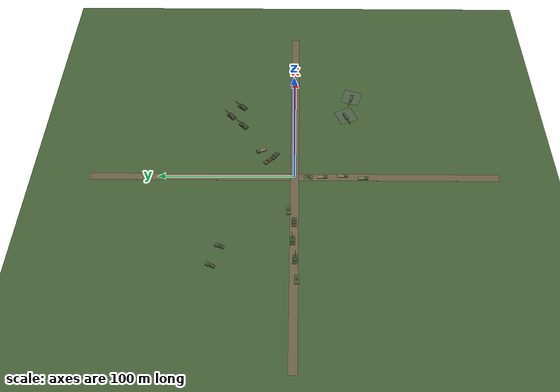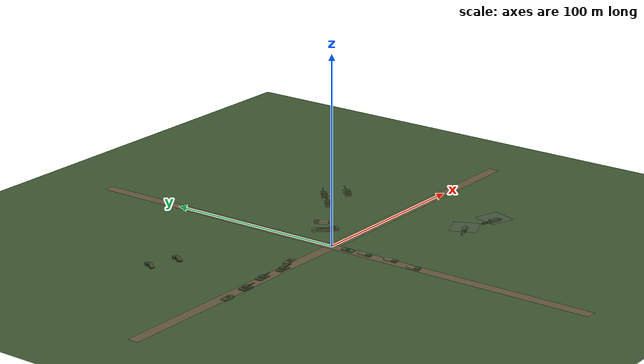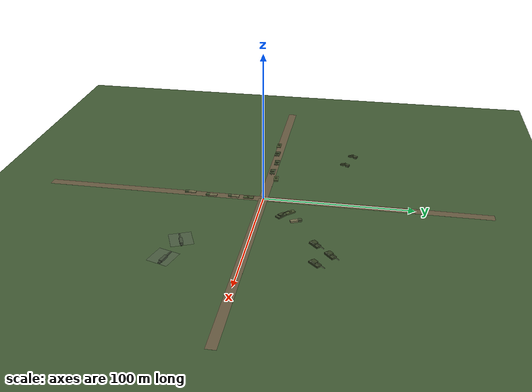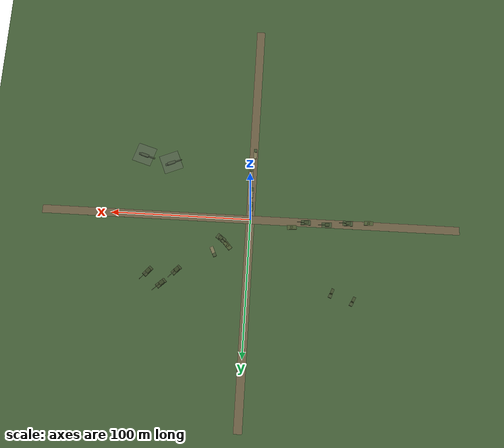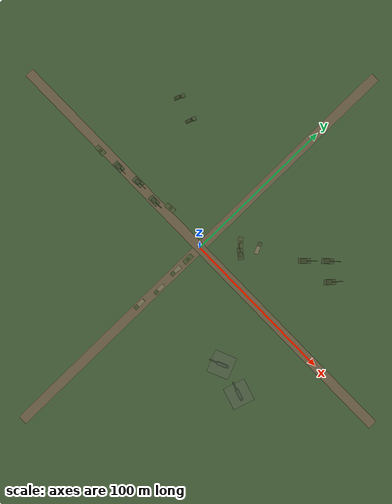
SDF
<sdf version="1.9">
 <world name="military_training">
  <physics name="1ms" type="ignore">
   <max_step_size>0.001</max_step_size>
   <real_time_factor>1.0</real_time_factor>
  </physics>
  <plugin filename="gz-sim-physics-system" name="gz::sim::systems::Physics"/>
  <plugin filename="gz-sim-sensors-system" name="gz::sim::systems::Sensors">
   <render_engine>ogre2</render_engine>
  </plugin>
  <plugin filename="gz-sim-user-commands-system" name="gz::sim::systems::UserCommands"/>
  <plugin filename="gz-sim-scene-broadcaster-system" name="gz::sim::systems::SceneBroadcaster"/>
  <plugin filename="gz-sim-imu-system" name="gz::sim::systems::Imu"/>
  <plugin filename="gz-sim-navsat-system" name="gz::sim::systems::NavSat"/>
  <scene><ambient>1.0 1.0 1.0</ambient><background>0.6 0.8 1.0</background></scene>
  <spherical_coordinates>
   <latitude_deg>50.450001</latitude_deg>
   <longitude_deg>30.523333</longitude_deg>
   <elevation>180</elevation>
   <heading_deg>0</heading_deg>
   <surface_model>EARTH_WGS84</surface_model>
  </spherical_coordinates>
  <light type="directional" name="sun">
   <pose>0 0 100 0 0 0</pose>
   <diffuse>0.9 0.9 0.9 1</diffuse>
   <specular>0.5 0.5 0.5 1</specular>
   <attenuation>
    <range>1000</range>
    <constant>0.9</constant>
    <linear>0.01</linear>
    <quadratic>0.001</quadratic>
   </attenuation>
   <direction>-0.5 0.3 -0.9</direction>
  </light>
  <model name="ground_plane">
   <static>true</static>
   <link name="link">
    <collision name="collision">
     <geometry><plane><normal>0 0 1</normal><size>500 500</size></plane></geometry>
    </collision>
    <visual name="visual">
     <geometry><plane><normal>0 0 1</normal><size>500 500</size></plane></geometry>
     <material><ambient>0.25 0.35 0.2 1</ambient><diffuse>0.25 0.35 0.2 1</diffuse></material>
    </visual>
   </link>
  </model>
  <model name="dirt_road_ew">
   <static>true</static>
   <link name="link">
    <visual name="v">
     <pose>0 0 0.005 0 0 0</pose>
     <geometry><box><size>300 6 0.01</size></box></geometry>
     <material><ambient>0.35 0.3 0.2 1</ambient><diffuse>0.4 0.35 0.25 1</diffuse></material>
    </visual>
    <collision name="c">
     <pose>0 0 0.005 0 0 0</pose>
     <geometry><box><size>300 6 0.01</size></box></geometry>
    </collision>
   </link>
  </model>
  <model name="dirt_road_ns">
   <static>true</static>
   <link name="link">
    <visual name="v">
     <pose>0 0 0.005 0 0 0</pose>
     <geometry><box><size>6 300 0.01</size></box></geometry>
     <material><ambient>0.35 0.3 0.2 1</ambient><diffuse>0.4 0.35 0.25 1</diffuse></material>
    </visual>
    <collision name="c">
     <pose>0 0 0.005 0 0 0</pose>
     <geometry><box><size>6 300 0.01</size></box></geometry>
    </collision>
   </link>
  </model>
  <include><uri>model://tank_t72</uri><name>tank_1</name><pose>-40 0 0 0 0 0</pose></include>
  <include><uri>model://tank_t72</uri><name>tank_2</name><pose>-55 1 0 0 0 0.05</pose></include>
  <include><uri>model://tank_t72</uri><name>tank_3</name><pose>-70 -1 0 0 0 -0.03</pose></include>
  <include><uri>model://apc_bmp2</uri><name>apc_1</name><pose>-30 4 0 0 0 0.1</pose></include>
  <include><uri>model://apc_bmp2</uri><name>apc_2</name><pose>-85 -2 0 0 0 0</pose></include>
  <include><uri>model://sp_artillery</uri><name>sp_art_1</name><pose>50 40 0 0 0 0.8</pose></include>
  <include><uri>model://sp_artillery</uri><name>sp_art_2</name><pose>60 50 0 0 0 0.75</pose></include>
  <include><uri>model://sp_artillery</uri><name>sp_art_3</name><pose>70 42 0 0 0 0.85</pose></include>
  <include><uri>model://mlrs_grad</uri><name>mlrs_1</name><pose>-60 50 0 0 0 1.2</pose></include>
  <include><uri>model://mlrs_grad</uri><name>mlrs_2</name><pose>-75 55 0 0 0 1.15</pose></include>
  <include><uri>model://military_truck</uri><name>truck_1</name><pose>0 -20 0 0 0 -1.57</pose></include>
  <include><uri>model://military_truck</uri><name>truck_2</name><pose>1 -35 0 0 0 -1.57</pose></include>
  <include><uri>model://military_truck</uri><name>truck_3</name><pose>-1 -50 0 0 0 -1.57</pose></include>
  <include><uri>model://apc_bmp2</uri><name>apc_3</name><pose>0 -10 0 0 0 -1.57</pose></include>
  <include><uri>model://helicopter_mi24</uri><name>helo_1</name><pose>60 -40 0 0 0 0.4</pose></include>
  <include><uri>model://helicopter_mi24</uri><name>helo_2</name><pose>80 -45 0 0 0 -0.3</pose></include>
  <include><uri>model://tank_t72</uri><name>tank_4</name><pose>20 15 0 0 0 2.5</pose></include>
  <include><uri>model://apc_bmp2</uri><name>apc_4</name><pose>15 20 0 0 0 2.3</pose></include>
  <include><uri>model://military_truck</uri><name>truck_4</name><pose>25 25 0 0 0 2.0</pose></include>
  <model name="synthetic_camera">
   <static>true</static>
   <pose>0 0 50 0 1.5708 0</pose>
   <link name="cam_link">
    <inertial>
     <mass>0.01</mass>
     <inertia><ixx>0.00001</ixx><iyy>0.00001</iyy><izz>0.00001</izz></inertia>
    </inertial>
    <sensor name="synth_cam_sensor" type="camera">
     <always_on>1</always_on>
     <update_rate>10</update_rate>
     <visualize>false</visualize>
     <topic>synthetic_cam</topic>
     <camera>
      <horizontal_fov>1.047</horizontal_fov>
      <image><width>640</width><height>480</height><format>RGB_INT8</format></image>
      <clip><near>0.1</near><far>500</far></clip>
     </camera>
    </sensor>
   </link>
  </model>
 </world>
</sdf>

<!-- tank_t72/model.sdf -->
<sdf version="1.9">
  <model name="tank_t72">
    <static>true</static>
    <pose>0 0 0.6 0 0 0</pose>
    <link name="body">
      <!-- Hull: 7.0 x 3.6 x 1.2m -->
      <visual name="hull">
        <geometry><box><size>7.0 3.6 1.2</size></box></geometry>
        <material>
          <ambient>0.2 0.25 0.15 1</ambient>
          <diffuse>0.25 0.3 0.18 1</diffuse>
        </material>
      </visual>
      <!-- Turret: 3.0 x 2.4 x 0.8m, centered, offset slightly back -->
      <visual name="turret">
        <pose>-0.3 0 1.0 0 0 0</pose>
        <geometry><box><size>3.0 2.4 0.8</size></box></geometry>
        <material>
          <ambient>0.17 0.22 0.12 1</ambient>
          <diffuse>0.22 0.27 0.15 1</diffuse>
        </material>
      </visual>
      <!-- Gun barrel: 0.3 x 0.3 x 5.0m thin box, extending forward from turret -->
      <visual name="gun_barrel">
        <pose>3.8 0 1.0 0 0 0</pose>
        <geometry><box><size>5.0 0.3 0.3</size></box></geometry>
        <material>
          <ambient>0.15 0.18 0.1 1</ambient>
          <diffuse>0.2 0.23 0.13 1</diffuse>
        </material>
      </visual>
      <collision name="collision">
        <geometry><box><size>7.0 3.6 1.2</size></box></geometry>
      </collision>
    </link>
  </model>
</sdf>

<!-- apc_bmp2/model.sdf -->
<sdf version="1.9">
  <model name="apc_bmp2">
    <static>true</static>
    <pose>0 0 0.55 0 0 0</pose>
    <link name="body">
      <!-- Hull: 6.7 x 3.1 x 1.1m -->
      <visual name="hull">
        <geometry><box><size>6.7 3.1 1.1</size></box></geometry>
        <material>
          <ambient>0.22 0.28 0.15 1</ambient>
          <diffuse>0.28 0.33 0.18 1</diffuse>
        </material>
      </visual>
      <!-- Small turret: 1.5 x 1.5 x 0.6m -->
      <visual name="turret">
        <pose>0.2 0 0.85 0 0 0</pose>
        <geometry><box><size>1.5 1.5 0.6</size></box></geometry>
        <material>
          <ambient>0.19 0.25 0.12 1</ambient>
          <diffuse>0.25 0.30 0.15 1</diffuse>
        </material>
      </visual>
      <collision name="collision">
        <geometry><box><size>6.7 3.1 1.1</size></box></geometry>
      </collision>
    </link>
  </model>
</sdf>

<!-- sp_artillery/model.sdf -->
<sdf version="1.9">
  <model name="sp_artillery">
    <static>true</static>
    <pose>0 0 0.75 0 0 0</pose>
    <link name="body">
      <!-- Hull: 7.5 x 3.4 x 1.5m -->
      <visual name="hull">
        <geometry><box><size>7.5 3.4 1.5</size></box></geometry>
        <material>
          <ambient>0.18 0.23 0.13 1</ambient>
          <diffuse>0.23 0.28 0.16 1</diffuse>
        </material>
      </visual>
      <!-- Large turret: 3.5 x 2.8 x 1.0m -->
      <visual name="turret">
        <pose>-0.5 0 1.25 0 0 0</pose>
        <geometry><box><size>3.5 2.8 1.0</size></box></geometry>
        <material>
          <ambient>0.15 0.20 0.10 1</ambient>
          <diffuse>0.20 0.25 0.13 1</diffuse>
        </material>
      </visual>
      <!-- Very long gun barrel: 0.35 x 0.35 x 7.0m -->
      <visual name="gun_barrel">
        <pose>4.5 0 1.25 0 0 0</pose>
        <geometry><box><size>7.0 0.35 0.35</size></box></geometry>
        <material>
          <ambient>0.13 0.17 0.08 1</ambient>
          <diffuse>0.18 0.22 0.11 1</diffuse>
        </material>
      </visual>
      <collision name="collision">
        <geometry><box><size>7.5 3.4 1.5</size></box></geometry>
      </collision>
    </link>
  </model>
</sdf>

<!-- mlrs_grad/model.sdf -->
<sdf version="1.9">
  <model name="mlrs_grad">
    <static>true</static>
    <pose>0 0 1.0 0 0 0</pose>
    <link name="body">
      <!-- Truck cab: 2.5 x 2.4 x 2.0m (front) -->
      <visual name="cab">
        <pose>2.75 0 0 0 0 0</pose>
        <geometry><box><size>2.5 2.4 2.0</size></box></geometry>
        <material>
          <ambient>0.2 0.25 0.15 1</ambient>
          <diffuse>0.25 0.3 0.18 1</diffuse>
        </material>
      </visual>
      <!-- Flatbed: 5.0 x 2.4 x 0.3m -->
      <visual name="flatbed">
        <pose>-1.0 0 -0.85 0 0 0</pose>
        <geometry><box><size>5.0 2.4 0.3</size></box></geometry>
        <material>
          <ambient>0.2 0.25 0.15 1</ambient>
          <diffuse>0.25 0.3 0.18 1</diffuse>
        </material>
      </visual>
      <!-- Launcher rack: 4.0 x 2.0 x 1.5m, angled ~20 degrees upward -->
      <visual name="launcher">
        <pose>-0.8 0 0.3 0 -0.35 0</pose>
        <geometry><box><size>4.0 2.0 1.5</size></box></geometry>
        <material>
          <ambient>0.17 0.22 0.12 1</ambient>
          <diffuse>0.22 0.27 0.15 1</diffuse>
        </material>
      </visual>
      <collision name="collision">
        <geometry><box><size>8.0 2.4 2.0</size></box></geometry>
      </collision>
    </link>
  </model>
</sdf>

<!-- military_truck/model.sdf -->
<sdf version="1.9">
  <model name="military_truck">
    <static>true</static>
    <pose>0 0 1.0 0 0 0</pose>
    <link name="body">
      <!-- Cab: 2.5 x 2.4 x 2.0m (front) -->
      <visual name="cab">
        <pose>2.75 0 0 0 0 0</pose>
        <geometry><box><size>2.5 2.4 2.0</size></box></geometry>
        <material>
          <ambient>0.2 0.25 0.15 1</ambient>
          <diffuse>0.25 0.3 0.18 1</diffuse>
        </material>
      </visual>
      <!-- Cargo bed: 5.0 x 2.4 x 1.8m (rear, lighter khaki) -->
      <visual name="cargo">
        <pose>-1.0 0 -0.1 0 0 0</pose>
        <geometry><box><size>5.0 2.4 1.8</size></box></geometry>
        <material>
          <ambient>0.35 0.35 0.25 1</ambient>
          <diffuse>0.45 0.43 0.30 1</diffuse>
        </material>
      </visual>
      <collision name="collision">
        <geometry><box><size>8.0 2.4 2.0</size></box></geometry>
      </collision>
    </link>
  </model>
</sdf>

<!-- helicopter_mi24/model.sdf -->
<sdf version="1.9">
  <model name="helicopter_mi24">
    <static>true</static>
    <pose>0 0 0.8 0 0 0</pose>
    <link name="body">
      <!-- Fuselage: 6.0 x 2.0 x 2.0m (main body) -->
      <visual name="fuselage">
        <geometry><box><size>6.0 2.0 2.0</size></box></geometry>
        <material>
          <ambient>0.15 0.22 0.12 1</ambient>
          <diffuse>0.20 0.27 0.15 1</diffuse>
        </material>
      </visual>
      <!-- Cockpit: 2.0 x 1.5 x 1.2m (front, slightly lower) -->
      <visual name="cockpit">
        <pose>3.5 0 -0.3 0 0 0</pose>
        <geometry><box><size>2.0 1.5 1.2</size></box></geometry>
        <material>
          <ambient>0.12 0.18 0.10 1</ambient>
          <diffuse>0.17 0.23 0.13 1</diffuse>
        </material>
      </visual>
      <!-- Tail boom: 5.0 x 0.8 x 0.8m (extending back) -->
      <visual name="tail_boom">
        <pose>-5.5 0 0.2 0 0 0</pose>
        <geometry><box><size>5.0 0.8 0.8</size></box></geometry>
        <material>
          <ambient>0.15 0.22 0.12 1</ambient>
          <diffuse>0.20 0.27 0.15 1</diffuse>
        </material>
      </visual>
      <!-- Main rotor disk: 14.0 x 14.0 x 0.05m flat disk (very thin) -->
      <visual name="rotor_disk">
        <pose>0 0 1.5 0 0 0</pose>
        <geometry><box><size>14.0 14.0 0.05</size></box></geometry>
        <material>
          <ambient>0.3 0.3 0.3 0.3</ambient>
          <diffuse>0.4 0.4 0.4 0.3</diffuse>
        </material>
      </visual>
      <!-- Landing skid left -->
      <visual name="skid_left">
        <pose>0 -1.0 -1.2 0 0 0</pose>
        <geometry><box><size>4.0 0.15 0.15</size></box></geometry>
        <material>
          <ambient>0.12 0.15 0.08 1</ambient>
          <diffuse>0.17 0.20 0.11 1</diffuse>
        </material>
      </visual>
      <!-- Landing skid right -->
      <visual name="skid_right">
        <pose>0 1.0 -1.2 0 0 0</pose>
        <geometry><box><size>4.0 0.15 0.15</size></box></geometry>
        <material>
          <ambient>0.12 0.15 0.08 1</ambient>
          <diffuse>0.17 0.20 0.11 1</diffuse>
        </material>
      </visual>
      <!-- Skid strut left front -->
      <visual name="strut_lf">
        <pose>1.0 -1.0 -0.7 0 0 0</pose>
        <geometry><box><size>0.1 0.1 1.0</size></box></geometry>
        <material>
          <ambient>0.12 0.15 0.08 1</ambient>
          <diffuse>0.17 0.20 0.11 1</diffuse>
        </material>
      </visual>
      <!-- Skid strut left rear -->
      <visual name="strut_lr">
        <pose>-1.0 -1.0 -0.7 0 0 0</pose>
        <geometry><box><size>0.1 0.1 1.0</size></box></geometry>
        <material>
          <ambient>0.12 0.15 0.08 1</ambient>
          <diffuse>0.17 0.20 0.11 1</diffuse>
        </material>
      </visual>
      <!-- Skid strut right front -->
      <visual name="strut_rf">
        <pose>1.0 1.0 -0.7 0 0 0</pose>
        <geometry><box><size>0.1 0.1 1.0</size></box></geometry>
        <material>
          <ambient>0.12 0.15 0.08 1</ambient>
          <diffuse>0.17 0.20 0.11 1</diffuse>
        </material>
      </visual>
      <!-- Skid strut right rear -->
      <visual name="strut_rr">
        <pose>-1.0 1.0 -0.7 0 0 0</pose>
        <geometry><box><size>0.1 0.1 1.0</size></box></geometry>
        <material>
          <ambient>0.12 0.15 0.08 1</ambient>
          <diffuse>0.17 0.20 0.11 1</diffuse>
        </material>
      </visual>
      <collision name="collision">
        <geometry><box><size>6.0 2.0 2.0</size></box></geometry>
      </collision>
    </link>
  </model>
</sdf>
